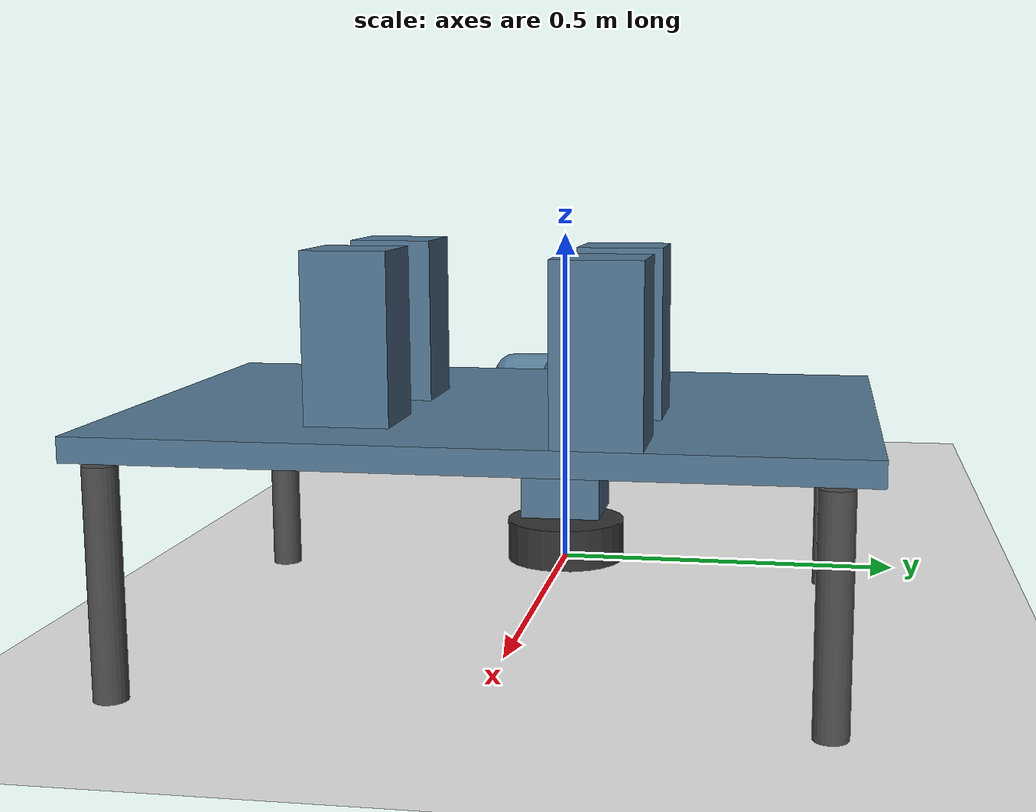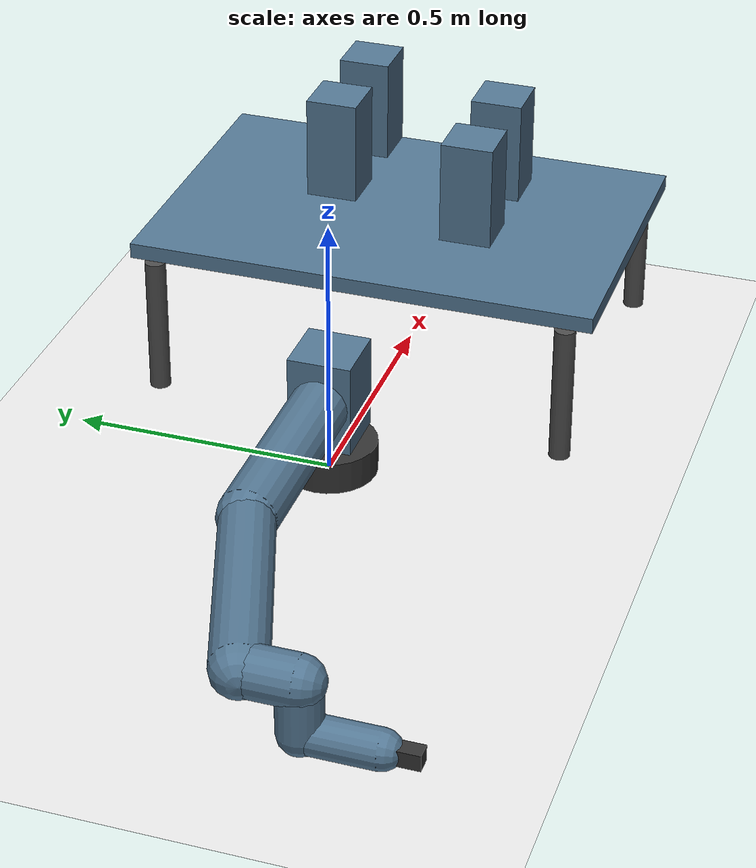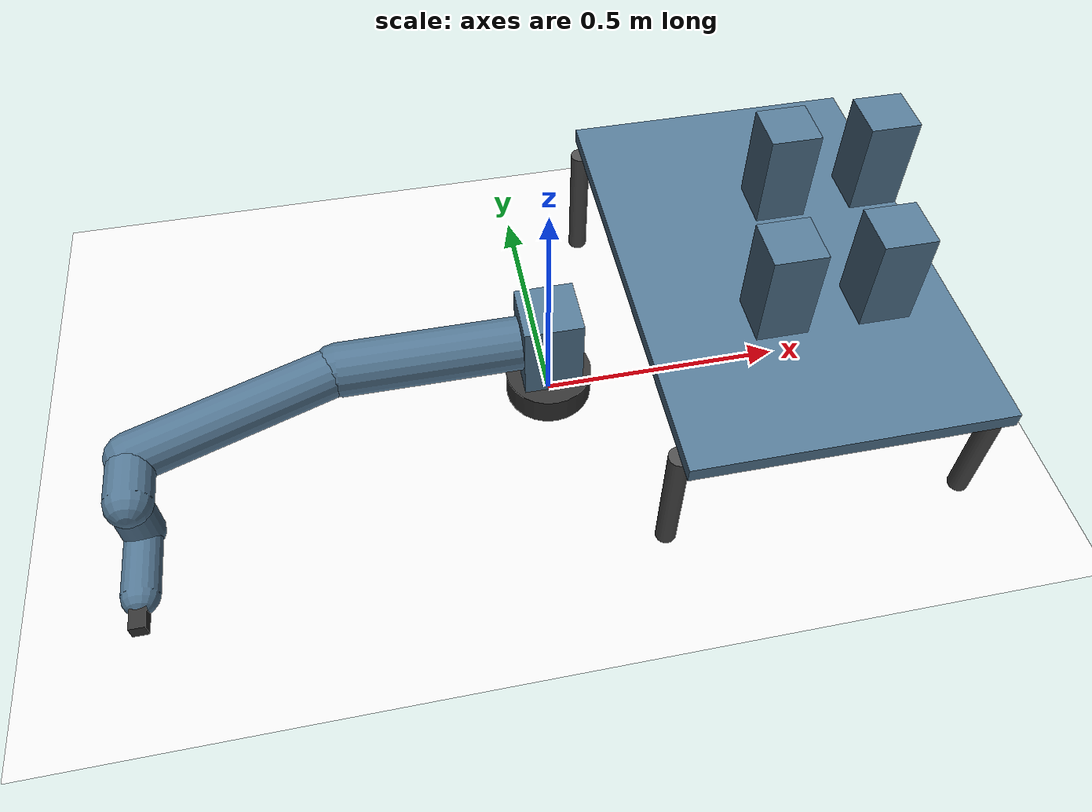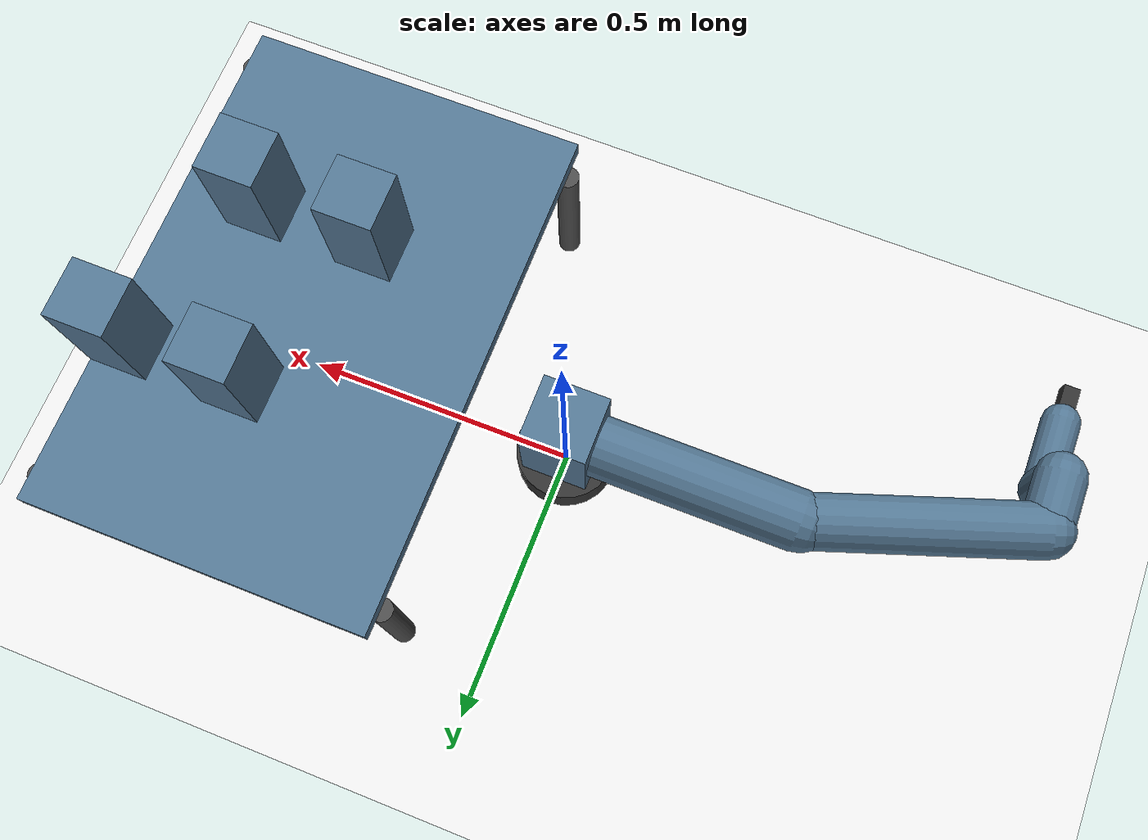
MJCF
<mujoco model="ur5e_lab4_obstacles">
  <!--
    Lab 4 Scene: UR5e with torque-mode actuators + obstacle boxes.
    Obstacles create narrow passages for motion planning demos.
  -->
  <include file="ur5e.xml"/>

  <statistic center="0.3 0 0.4" extent="1.2"/>

  <visual>
    <headlight diffuse="0.6 0.6 0.6" ambient="0.3 0.3 0.3" specular="0 0 0"/>
    <rgba haze="0.15 0.25 0.35 1"/>
    <global azimuth="150" elevation="-25" offwidth="1920" offheight="1080"/>
  </visual>

  <asset>
    <texture type="skybox" builtin="gradient" rgb1="0.3 0.5 0.7" rgb2="0 0 0"
      width="512" height="3072"/>
    <texture type="2d" name="groundplane" builtin="checker" mark="edge"
      rgb1="0.2 0.3 0.4" rgb2="0.1 0.2 0.3" markrgb="0.8 0.8 0.8"
      width="300" height="300"/>
    <material name="groundplane" texture="groundplane" texuniform="true"
      texrepeat="5 5" reflectance="0.2"/>
    <material name="obstacle_red" rgba="0.85 0.22 0.22 0.95"/>
    <material name="obstacle_orange" rgba="0.90 0.48 0.10 0.95"/>
    <material name="table_wood" rgba="0.55 0.35 0.20 1"/>
  </asset>

  <worldbody>
    <light pos="0 0 2.5" dir="0 0 -1" directional="true"/>
    <light pos="1.5 -1.5 2.0" dir="-0.5 0.5 -1" directional="false"/>
    <geom name="floor" size="0 0 0.05" type="plane" material="groundplane"/>
    <camera name="fixed_top" pos="0.55 0.0 1.65" xyaxes="1 0 0 0 1 0"/>
    <camera name="orbit_45" pos="1.20 -1.10 1.05" xyaxes="0.707 0.707 0 -0.409 0.409 0.816"/>

    <!-- Table surface (near edge at x=0.15, far enough from robot base) -->
    <body name="table" pos="0.45 0.0 0.3">
      <geom name="table_top" type="box" size="0.30 0.45 0.015" material="table_wood"/>
      <!-- Legs (visual only) -->
      <geom type="cylinder" pos="-0.30 -0.40 -0.15" size="0.02 0.135" rgba="0.3 0.3 0.3 1" contype="0" conaffinity="0"/>
      <geom type="cylinder" pos="0.30 -0.40 -0.15" size="0.02 0.135" rgba="0.3 0.3 0.3 1" contype="0" conaffinity="0"/>
      <geom type="cylinder" pos="-0.30 0.40 -0.15" size="0.02 0.135" rgba="0.3 0.3 0.3 1" contype="0" conaffinity="0"/>
      <geom type="cylinder" pos="0.30 0.40 -0.15" size="0.02 0.135" rgba="0.3 0.3 0.3 1" contype="0" conaffinity="0"/>
    </body>

    <!-- Obstacle 1: left side -->
    <body name="obstacle_1" pos="0.4 -0.15 0.415">
      <geom name="obs1" type="box" size="0.05 0.05 0.10" material="obstacle_red"/>
    </body>

    <!-- Obstacle 2: right side -->
    <body name="obstacle_2" pos="0.5 0.15 0.415">
      <geom name="obs2" type="box" size="0.05 0.05 0.10" material="obstacle_orange"/>
    </body>

    <!-- Obstacle 3: left side -->
    <body name="obstacle_3" pos="0.6 -0.15 0.415">
      <geom name="obs3" type="box" size="0.05 0.05 0.10" material="obstacle_red"/>
    </body>

    <!-- Obstacle 4: right side -->
    <body name="obstacle_4" pos="0.7 0.15 0.415">
      <geom name="obs4" type="box" size="0.05 0.05 0.10" material="obstacle_orange"/>
    </body>
  </worldbody>
</mujoco>

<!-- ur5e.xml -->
<mujoco model="ur5e_lab4_torque">
  <compiler angle="radian" autolimits="true"/>
  <option timestep="0.001" gravity="0 0 -9.81" integrator="RK4"/>

  <default>
    <joint damping="1.0" armature="0.01" limited="true"/>
    <geom rgba="0.33 0.47 0.58 1" density="800"/>
    <motor ctrllimited="true" ctrlrange="-180 180"/>
  </default>

  <worldbody>
    <geom type="plane" size="2 2 0.1" rgba="0.92 0.92 0.92 1"/>
    <body name="base" pos="0 0 0">
      <geom type="cylinder" size="0.09 0.06" rgba="0.20 0.20 0.20 1"/>
      <body name="shoulder" pos="0 0 0.1625" euler="0 0 0">
        <joint name="shoulder_pan_joint" axis="0 0 1" range="-6.28318530718 6.28318530718"/>
        <geom type="box" size="0.06 0.06 0.09"/>
        <body name="upper_arm" pos="0 0 0" euler="1.57079632679 0 0">
          <joint name="shoulder_lift_joint" axis="0 0 1" range="-6.28318530718 6.28318530718"/>
          <geom type="capsule" fromto="0 0 0 -0.425 0 0" size="0.055"/>
          <body name="forearm" pos="-0.425 0 0" euler="0 0 0">
            <joint name="elbow_joint" axis="0 0 1" range="-6.28318530718 6.28318530718"/>
            <geom type="capsule" fromto="0 0 0 -0.3922 0 0.1333" size="0.05"/>
            <body name="wrist_1" pos="-0.3922 0 0.1333" euler="0 0 0">
              <joint name="wrist_1_joint" axis="0 0 1" range="-6.28318530718 6.28318530718"/>
              <geom type="capsule" fromto="0 0 0 0 0 0.0997" size="0.045"/>
              <body name="wrist_2" pos="0 0 0.0997" euler="1.57079632679 0 0">
                <joint name="wrist_2_joint" axis="0 0 1" range="-6.28318530718 6.28318530718"/>
                <geom type="capsule" fromto="0 0 0 0 0 0.0996" size="0.04"/>
                <body name="wrist_3" pos="0 0 0.0996" euler="-1.57079632679 0 0">
                  <joint name="wrist_3_joint" axis="0 0 1" range="-6.28318530718 6.28318530718"/>
                  <geom type="capsule" fromto="0 0 0 0 0 0.135" size="0.035"/>
                  <body name="tool0" pos="0 0 0.135">
                    <geom type="box" size="0.015 0.015 0.0675" rgba="0.20 0.20 0.20 1"/>
                    <site name="tool_site" pos="0 0 0" size="0.012" rgba="1 0.2 0.2 1"/>
                  </body>
                </body>
              </body>
            </body>
          </body>
        </body>
      </body>
    </body>
  </worldbody>

  <actuator>
    <motor name="motor1" joint="shoulder_pan_joint"/>
    <motor name="motor2" joint="shoulder_lift_joint"/>
    <motor name="motor3" joint="elbow_joint"/>
    <motor name="motor4" joint="wrist_1_joint"/>
    <motor name="motor5" joint="wrist_2_joint"/>
    <motor name="motor6" joint="wrist_3_joint"/>
  </actuator>
</mujoco>
